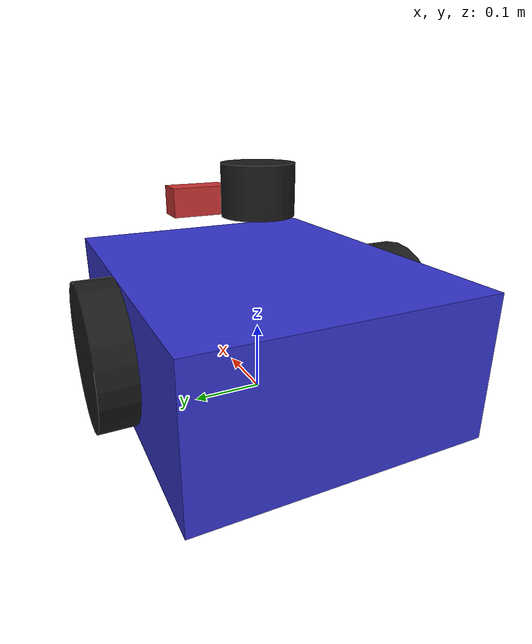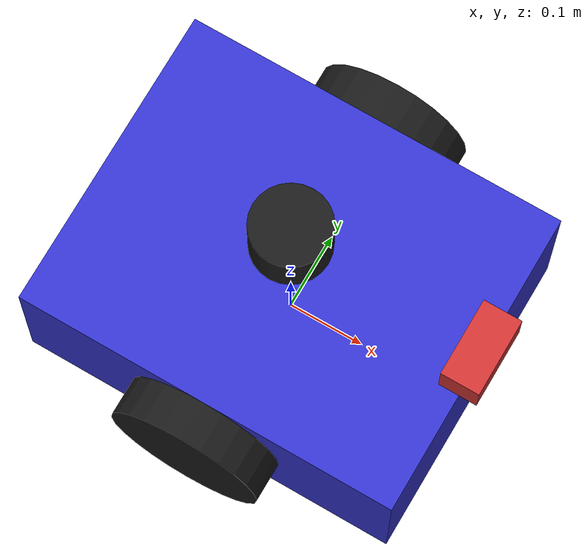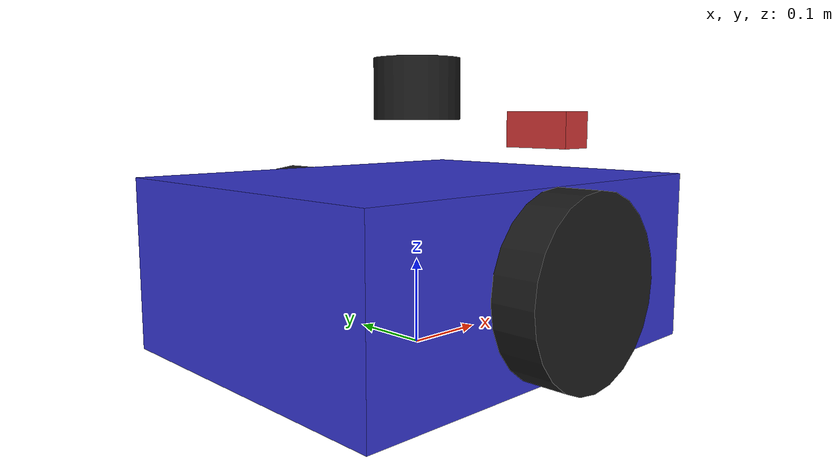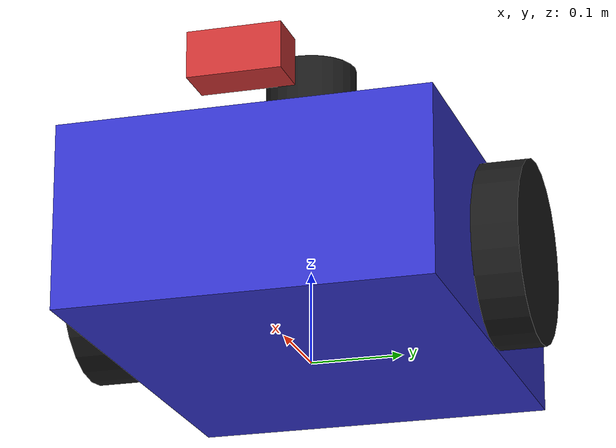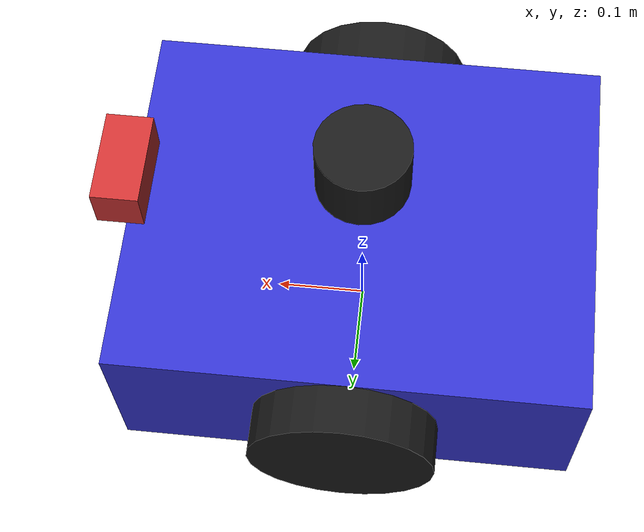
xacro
<?xml version="1.0"?>
<robot xmlns:xacro="http://www.ros.org/wiki/xacro" name="semantic_robot">

  <!-- Properties -->
  <xacro:property name="base_width" value="0.4"/>
  <xacro:property name="base_length" value="0.5"/>
  <xacro:property name="base_height" value="0.2"/>
  <xacro:property name="wheel_radius" value="0.1"/>
  <xacro:property name="wheel_width" value="0.05"/>
  <xacro:property name="wheel_separation" value="0.45"/>
  <xacro:property name="wheel_base" value="0.3"/>

  <!-- Base Link -->
  <link name="base_footprint"/>

  <joint name="base_joint" type="fixed">
    <parent link="base_footprint"/>
    <child link="base_link"/>
    <origin xyz="0 0 ${wheel_radius}" rpy="0 0 0"/>
  </joint>

  <link name="base_link">
    <visual>
      <geometry>
        <box size="${base_length} ${base_width} ${base_height}"/>
      </geometry>
      <material name="blue">
        <color rgba="0.2 0.2 0.8 1"/>
      </material>
    </visual>
    <collision>
      <geometry>
        <box size="${base_length} ${base_width} ${base_height}"/>
      </geometry>
    </collision>
    <inertial>
      <mass value="10"/>
      <inertia ixx="0.1" ixy="0" ixz="0" iyy="0.1" iyz="0" izz="0.1"/>
    </inertial>
  </link>

  <!-- Wheels -->
  <xacro:macro name="wheel" params="prefix reflect">
    <link name="${prefix}_wheel">
      <visual>
        <geometry>
          <cylinder radius="${wheel_radius}" length="${wheel_width}"/>
        </geometry>
        <material name="black">
          <color rgba="0.1 0.1 0.1 1"/>
        </material>
      </visual>
      <collision>
        <geometry>
          <cylinder radius="${wheel_radius}" length="${wheel_width}"/>
        </geometry>
      </collision>
      <inertial>
        <mass value="1"/>
        <inertia ixx="0.01" ixy="0" ixz="0" iyy="0.01" iyz="0" izz="0.01"/>
      </inertial>
    </link>

    <joint name="${prefix}_wheel_joint" type="continuous">
      <parent link="base_link"/>
      <child link="${prefix}_wheel"/>
      <origin xyz="0 ${reflect * wheel_separation/2} 0" rpy="-1.5707 0 0"/>
      <axis xyz="0 0 1"/>
    </joint>
  </xacro:macro>

  <xacro:wheel prefix="left" reflect="1"/>
  <xacro:wheel prefix="right" reflect="-1"/>

  <!-- Caster Wheel -->
  <link name="caster_wheel">
    <visual>
      <geometry>
        <sphere radius="0.05"/>
      </geometry>
      <material name="grey">
        <color rgba="0.5 0.5 0.5 1"/>
      </material>
    </visual>
    <collision>
      <geometry>
        <sphere radius="0.05"/>
      </geometry>
    </collision>
    <inertial>
      <mass value="0.5"/>
      <inertia ixx="0.001" ixy="0" ixz="0" iyy="0.001" iyz="0" izz="0.001"/>
    </inertial>
  </link>

  <joint name="caster_joint" type="fixed">
    <parent link="base_link"/>
    <child link="caster_wheel"/>
    <origin xyz="-0.2 0 -0.05" rpy="0 0 0"/>
  </joint>

  <!-- Camera -->
  <link name="camera_link">
    <visual>
      <geometry>
        <box size="0.05 0.1 0.05"/>
      </geometry>
      <material name="red">
        <color rgba="0.8 0.2 0.2 1"/>
      </material>
    </visual>
    <collision>
      <geometry>
        <box size="0.05 0.1 0.05"/>
      </geometry>
    </collision>
    <inertial>
      <mass value="0.1"/>
      <inertia ixx="0.0001" ixy="0" ixz="0" iyy="0.0001" iyz="0" izz="0.0001"/>
    </inertial>
  </link>

  <joint name="camera_joint" type="fixed">
    <parent link="base_link"/>
    <child link="camera_link"/>
    <origin xyz="0.25 0 0.15" rpy="0 0 0"/>
  </joint>

  <link name="camera_optical_frame"/>

  <joint name="camera_optical_joint" type="fixed">
    <parent link="camera_link"/>
    <child link="camera_optical_frame"/>
    <origin xyz="0 0 0" rpy="-1.5707 0 -1.5707"/>
  </joint>

  <!-- LiDAR -->
  <link name="lidar_link">
    <visual>
      <geometry>
        <cylinder radius="0.05" length="0.07"/>
      </geometry>
      <material name="black">
        <color rgba="0.1 0.1 0.1 1"/>
      </material>
    </visual>
    <collision>
      <geometry>
        <cylinder radius="0.05" length="0.07"/>
      </geometry>
    </collision>
    <inertial>
      <mass value="0.2"/>
      <inertia ixx="0.0001" ixy="0" ixz="0" iyy="0.0001" iyz="0" izz="0.0001"/>
    </inertial>
  </link>

  <joint name="lidar_joint" type="fixed">
    <parent link="base_link"/>
    <child link="lidar_link"/>
    <origin xyz="0 0 0.2" rpy="0 0 0"/>
  </joint>

  <!-- Include Gazebo plugins -->
  <xacro:include filename="$(find semantic_navigation)/urdf/robot.gazebo"/>

</robot>
